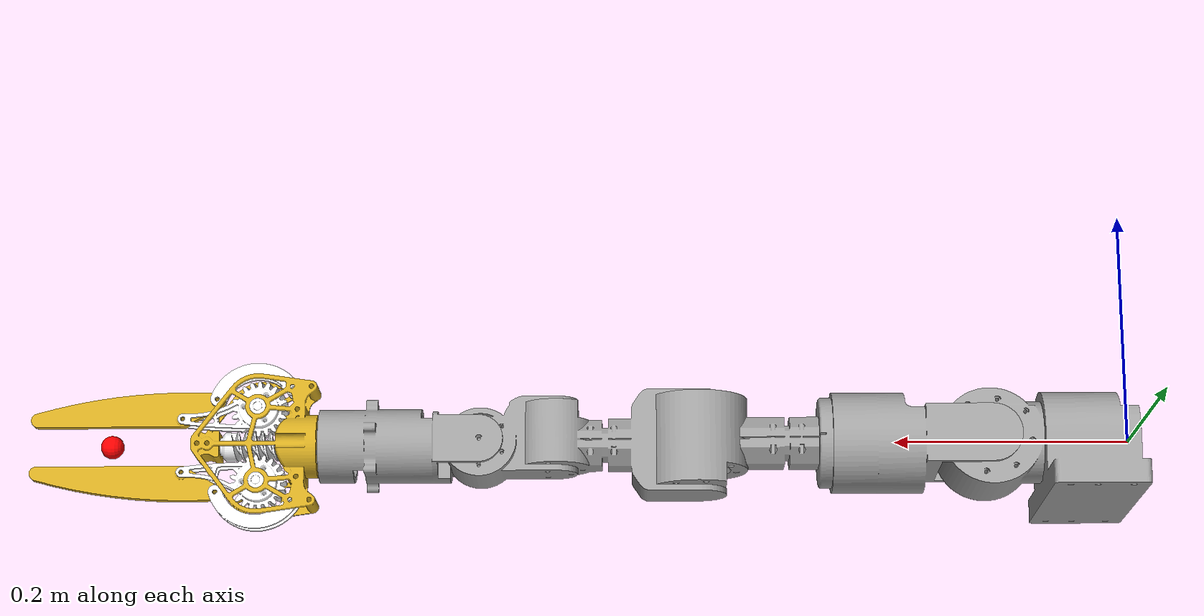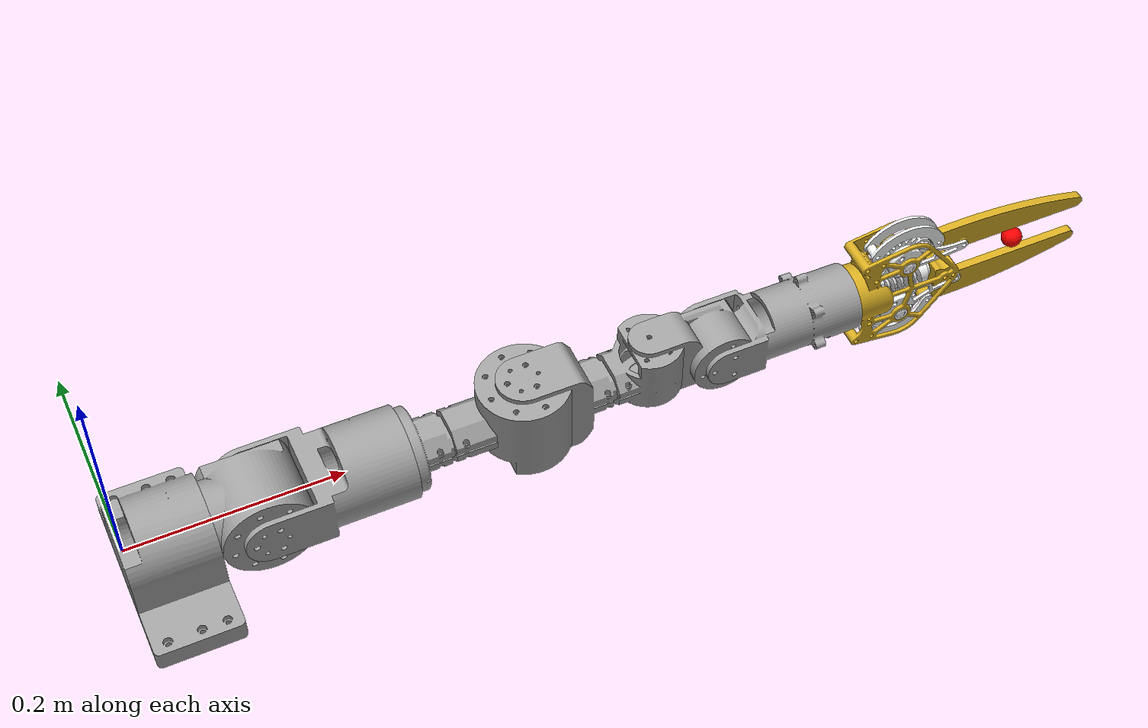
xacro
<?xml version="1.0"?>
<robot xmlns:xacro="http://www.ros.org/wiki/xacro" name="left_walkie_arm">
    <xacro:arg name="initial_positions_file" default="initial_positions.yaml" />

    <!-- Import left_walkie_arm urdf file -->
    <xacro:include filename="$(find walkie_description)/robots/left-walkie-arm.urdf.xacro" />

    <!-- Import control_xacro -->
    <xacro:include filename="left_walkie_arm.ros2_control.xacro" />

    <xacro:left_walkie_arm_ros2_control name="FakeSystem" initial_positions_file="$(arg initial_positions_file)"/>

</robot>

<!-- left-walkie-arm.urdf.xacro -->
<robot xmlns:xacro="http://www.ros.org/wiki/xacro" name="left_walkie_arm">

    <xacro:arg name="robot_name" default="left_walkie_arm" />
    <xacro:arg name="base_link" default="base_link" />
    <xacro:arg name="use_gripper" default="true" />

    <xacro:arg name="ros2_control_hardware_type" default="mock_components" />
    <xacro:arg name="hardware_config_file" default="$(find arm_description)/config/hardware_layout.yaml" />

    <xacro:include filename="$(find arm_description)/urdf/walkie-arm/walkie_arm.urdf.xacro" />
    <xacro:include filename="$(find arm_description)/urdf/walkie-gripper/walkie_gripper.urdf.xacro" />
    <xacro:include filename="$(find arm_description)/urdf/walkie/left_arm_ros2_control.xacro" />

    <xacro:walkie_arm base_link="$(arg base_link)" prefix="left" />

    <xacro:if value="$(arg use_gripper)">
      <xacro:walkie_gripper parent="left_link6" prefix="left" />
    </xacro:if>

    <xacro:if value="$(arg use_gripper)">
      <link name="left_gripper_center">
        <visual>
          <geometry> <sphere radius="0.01"/> </geometry>
          <material name="red"> <color rgba="1 0 0 1"/> </material>
        </visual>
        <collision>
          <geometry> <sphere radius="0.01"/> </geometry>
        </collision>
        <inertial>
          <mass value="0.001" />
          <inertia ixx="1e-6" ixy="0" ixz="0" iyy="1e-6" iyz="0" izz="1e-6" />
        </inertial>
      </link>

      <joint name="left_gripper_center_joint" type="fixed">
        <parent link="left_link7"/>
        <child link="left_gripper_center"/>
        <origin xyz="0.0 0.0 -0.18" rpy="0.0 0.0 0.0"/>
      </joint>
    </xacro:if>

    <gazebo reference="$(arg base_link)">
      <material>Gazebo/Grey</material>
    </gazebo>

    <xacro:left_arm_ros2_control
        name="LeftWalkieSystem"
        prefix="left"
        hardware_config_file="$(arg hardware_config_file)"
    />

</robot>

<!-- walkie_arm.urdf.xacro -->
<robot xmlns:xacro="http://www.ros.org/wiki/xacro">

  <xacro:property name="joint_effort" value="30.0" />
  <xacro:property name="joint_velocity" value="2.0" />
  <xacro:property name="joint_damping" value="0.1" />
  <xacro:property name="joint_friction" value="0.1" />

  <material name="walkie_steel_satin">
    <color rgba="0.62353 0.62353 0.62353 1.0" />
  </material>

  <xacro:macro name="walkie_arm" params="base_link prefix">

    <link name="${base_link}">
      <visual>
        <material name="walkie_steel_satin" />
        <origin rpy="0.0 0.0 0.0" xyz="0.07550 0.0 0.0" />
        <geometry>
          <mesh filename="package://arm_description/meshes/walkie-arm/stl/Body1.267.stl" scale="1 1 1"/>
        </geometry>
      </visual>
      <collision>
        <origin rpy="0.0 0.0 0.0" xyz="0.07550 0.0 0.0" />
        <geometry>
          <mesh filename="package://arm_description/meshes/walkie-arm/stl/Body1.267.stl" scale="1 1 1"/>
        </geometry>
      </collision>
      <inertial>
        <origin xyz="0 0 0" rpy="0 0 0"/>
        <mass value="0.5"/>
        <inertia ixx="0.001" ixy="0" ixz="0" iyy="0.001" iyz="0" izz="0.001"/>
      </inertial>
    </link>

    <joint name="${prefix}_joint1" type="revolute">
      <axis xyz="1.0 0.0 0.0" />
      <limit effort="${joint_effort}" lower="-3.14" upper="3.14" velocity="${joint_velocity}" />
      <parent link="${base_link}" />
      <child link="${prefix}_link1" />
      <origin xyz="0.07550 0.0 0.0" rpy="0.0 0.0 0.0" />
      <dynamics damping="${joint_damping}" friction="${joint_friction}" />
    </joint>

    <link name="${prefix}_link1">
      <visual>
        <material name="walkie_steel_satin" />
        <origin rpy="0.0 0.0 0.0" xyz="0.04425 -0.03925 0.0" />
        <geometry>
          <mesh filename="package://arm_description/meshes/walkie-arm/stl/Body8.006.stl" scale="1 1 1"/>
        </geometry>
      </visual>
      <collision>
        <origin rpy="0.0 0.0 0.0" xyz="0.04425 -0.03925 0.0" />
        <geometry>
          <mesh filename="package://arm_description/meshes/walkie-arm/stl/Body8.006.stl" scale="1 1 1"/>
        </geometry>
      </collision>
      <inertial>
        <mass value="0.15" />
        <inertia ixx="0.00015" ixy="0.0" ixz="0.0" iyy="0.00015" iyz="0.0" izz="0.0001" />
      </inertial>
    </link>

    <joint name="${prefix}_joint2" type="revolute">
      <axis xyz="0.0 -1.0 0.0" />
      <limit effort="${joint_effort}" lower="-1.57" upper="1.57" velocity="${joint_velocity}" />
      <parent link="${prefix}_link1" />
      <child link="${prefix}_link2" />
      <origin xyz="0.04425 -0.03925 0.0" rpy="0.0 -1.57 0.0" />
      <dynamics damping="${joint_damping}" friction="${joint_friction}" />
    </joint>

    <link name="${prefix}_link2">
      <visual>
        <material name="walkie_steel_satin" />
        <origin rpy="0.0 0.0 0.0" xyz="0.0 0.03925 -0.13525" />
        <geometry>
          <mesh filename="package://arm_description/meshes/walkie-arm/stl/Body2.006.stl" scale="1 1 1"/>
        </geometry>
      </visual>
      <collision>
       <origin rpy="0.0 0.0 0.0" xyz="0.0 0.03925 -0.13525" />
        <geometry>
          <mesh filename="package://arm_description/meshes/walkie-arm/stl/Body2.006.stl" scale="1 1 1"/>
        </geometry>
      </collision>
      <inertial>
        <mass value="0.12" />
        <inertia ixx="0.00012" ixy="0.0" ixz="0.0" iyy="0.00012" iyz="0.0" izz="0.00008" />
      </inertial>
    </link>

    <joint name="${prefix}_joint3" type="revolute">
      <axis xyz="0.0 0.0 -1.0" />
      <limit effort="${joint_effort}" lower="-3.14" upper="3.14" velocity="${joint_velocity}" />
      <parent link="${prefix}_link2" />
      <child link="${prefix}_link3" />
      <origin xyz="0.0 0.03925 -0.13525" rpy="0.0 0.0 0.0" />
      <dynamics damping="${joint_damping}" friction="${joint_friction}" />
    </joint>

    <link name="${prefix}_link3">
      <visual>
        <material name="walkie_steel_satin" />
        <origin rpy="0.0 0.0 0.0" xyz="0.03825 0.0 -0.11475" />
        <geometry>
          <mesh filename="package://arm_description/meshes/walkie-arm/stl/Body1.266.stl" scale="1 1 1"/>
        </geometry>
      </visual>
      <collision>
        <origin rpy="0.0 0.0 0.0" xyz="0.03825 0.0 -0.11475" />
        <geometry>
          <mesh filename="package://arm_description/meshes/walkie-arm/stl/Body1.266.stl" scale="1 1 1"/>
        </geometry>
      </collision>
      <inertial>
        <mass value="0.20" />
        <inertia ixx="0.0002" ixy="0.0" ixz="0.0" iyy="0.0002" iyz="0.0" izz="0.00012" />
      </inertial>
    </link>

    <joint name="${prefix}_joint4" type="revolute">
      <axis xyz="1.0 0.0 0.0" />
      <limit effort="${joint_effort}" lower="-1.9" upper="1.9" velocity="${joint_velocity}" />
      <parent link="${prefix}_link3" />
      <child link="${prefix}_link4" />
      <origin xyz="0.03825 0.0 -0.11475" rpy="0.0 0.0 0.0" />
      <dynamics damping="${joint_damping}" friction="${joint_friction}" />
    </joint>

    <link name="${prefix}_link4">
      <visual>
        <material name="walkie_steel_satin" />
        <origin rpy="0.0 0.0 0.0" xyz="-0.05962 0.0 -0.12200" />
        <geometry>
          <mesh filename="package://arm_description/meshes/walkie-arm/stl/Body2.020.stl" scale="1 1 1"/>
        </geometry>
      </visual>
      <collision>
        <origin rpy="0.0 0.0 0.0" xyz="-0.05962 0.0 -0.12200" />
        <geometry>
          <mesh filename="package://arm_description/meshes/walkie-arm/stl/Body2.020.stl" scale="1 1 1"/>
        </geometry>
      </collision>
      <inertial>
        <mass value="0.18" />
        <inertia ixx="0.00025" ixy="0.0" ixz="0.0" iyy="0.00025" iyz="0.0" izz="0.00015" />
      </inertial>
    </link>

    <joint name="${prefix}_joint5" type="revolute">
      <axis xyz="-1.0 0.0 0.0" />
      <limit effort="${joint_effort}" lower="-1.57" upper="1.57" velocity="${joint_velocity}" />
      <parent link="${prefix}_link4" />
      <child link="${prefix}_link5" />
      <origin xyz="-0.05962 0.0 -0.12200" rpy="0.0 0.0 0.0" />
      <dynamics damping="${joint_damping}" friction="${joint_friction}" />
    </joint>

    <link name="${prefix}_link5">
      <visual>
        <material name="walkie_steel_satin" />
        <origin rpy="0.0 0.0 0.0" xyz="0.02037 -0.02800 -0.06500" />
        <geometry>
          <mesh filename="package://arm_description/meshes/walkie-arm/stl/Body2.026.stl" scale="1 1 1"/>
        </geometry>
      </visual>
      <collision>
        <origin rpy="0.0 0.0 0.0" xyz="0.02037 -0.02800 -0.06500" />
        <geometry>
          <mesh filename="package://arm_description/meshes/walkie-arm/stl/Body2.026.stl" scale="1 1 1"/>
        </geometry>
      </collision>
      <inertial>
        <mass value="0.15" />
        <inertia ixx="0.0002" ixy="0.0" ixz="0.0" iyy="0.0002" iyz="0.0" izz="0.00012" />
      </inertial>
    </link>

    <joint name="${prefix}_joint6" type="revolute">
      <axis xyz="0.0 -1.0 0.0" />
      <limit effort="${joint_effort}" lower="-1.57" upper="1.57" velocity="${joint_velocity}" />
      <parent link="${prefix}_link5" />
      <child link="${prefix}_link6" />
      <origin xyz="0.02037 -0.02800 -0.06500" rpy="0.0 0.0 0.0" />
      <dynamics damping="${joint_damping}" friction="${joint_friction}" />
    </joint>

    <link name="${prefix}_link6">
      <visual>
        <material name="walkie_steel_satin" />
        <origin rpy="0.0 0.0 0.0" xyz="0.0 0.02800 -0.13825" />
        <geometry>
          <mesh filename="package://arm_description/meshes/walkie-arm/stl/Body1.259.stl" scale="1 1 1"/>
        </geometry>
      </visual>
      <collision>
        <origin rpy="0.0 0.0 0.0" xyz="0.0 0.02800 -0.13825" />
        <geometry>
          <mesh filename="package://arm_description/meshes/walkie-arm/stl/Body1.259.stl" scale="1 1 1"/>
        </geometry>
      </collision>
      <inertial>
        <mass value="0.10" />
        <inertia ixx="0.00015" ixy="0.0" ixz="0.0" iyy="0.00015" iyz="0.0" izz="0.0001" />
      </inertial>
    </link>

  </xacro:macro>
</robot>

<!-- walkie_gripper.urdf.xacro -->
<robot xmlns:xacro="http://www.ros.org/wiki/xacro">
  <xacro:property name="joint_effort" value="10.0" />
  <xacro:property name="joint_velocity" value="1.0" />
  <xacro:property name="joint_damping" value="0.1" />
  <xacro:property name="joint_friction" value="0.1" />

  <xacro:property name="worm_joint_effort" value="20.0" />
  <xacro:property name="worm_joint_velocity" value="2.0" />

  <xacro:macro name="gripper_link_inertial" params="mass">
    <inertial>
      <origin xyz="0 0 0" rpy="0 0 0" />
      <mass value="${mass}" />
      <inertia ixx="1e-6" ixy="0.0" ixz="0.0" iyy="1e-6" iyz="0.0" izz="1e-6" />
    </inertial>
  </xacro:macro>

  <material name="walkie_aluminum_polished">
    <color rgba="0.95686 0.96078 0.96471 1.0" />
  </material>
  <material name="walkie_opaque_gold">
    <color rgba="0.83137 0.66667 0.12941 1.0" />
  </material>

  <xacro:macro name="walkie_gripper" params="parent prefix">

    <joint name="${prefix}_joint7" type="revolute">
      <axis xyz="0.0 0.0 -1.0" />
      <limit effort="30.0" lower="-3.14" upper="3.14" velocity="2.0" />
      <parent link="${parent}" /> <child link="${prefix}_link7" />
      <origin xyz="0.0 0.02800 -0.13825" rpy="0.0 0.0 0.0" />
      <dynamics damping="${joint_damping}" friction="${joint_friction}" />
    </joint>

    <link name="${prefix}_link7">
      <visual>
        <material name="walkie_opaque_gold" />
        <origin rpy="0.0 0.0 0.0" xyz="0.0 0.02116 -0.03906" />
        <geometry>
          <mesh filename="package://arm_description/meshes/walkie-gripper/stl/Body1.121.stl" scale="1 1 1"/>
        </geometry>
      </visual>
      <collision>
        <origin rpy="0.0 0.0 0.0" xyz="0.0 0.0 -0.03004"/>
        <geometry>
          <box size="0.12520 0.05916 0.05330"/>
        </geometry>
      </collision>
      <xacro:gripper_link_inertial mass="0.2" />
    </link>

    <link name="${prefix}_gripper_worm_gear">
      <xacro:gripper_link_inertial mass="0.02" />
      <visual>
        <material name="walkie_aluminum_polished" />
        <origin rpy="0.0 0.0 0.0" xyz="0.0 0.0 0.0" />
        <geometry>
          <mesh filename="package://arm_description/meshes/walkie-gripper/stl/Body1.133.stl" scale="1 1 1"/>
        </geometry>
      </visual>
    </link>

    <joint name="${prefix}_gripper_worm_gear" type="revolute">
      <limit lower="-15.7" upper="3.14" effort="${worm_joint_effort}" velocity="${worm_joint_velocity}"/>
      <origin rpy="0.0 0.0 0.0" xyz="0.0 0.0 -0.00275"/>
      <parent link="${prefix}_link7"/>
      <child link="${prefix}_gripper_worm_gear"/>
      <axis xyz="0.0 0.0 -1.0"/>
      <dynamics damping="${joint_damping}" friction="${joint_friction}" />
    </joint>

    <link name="${prefix}_gripper_gear_r">
      <xacro:gripper_link_inertial mass="0.01" />
      <visual>
        <material name="walkie_aluminum_polished" />
        <geometry>
          <mesh filename="package://arm_description/meshes/walkie-gripper/stl/Body1.113.stl" scale="1 1 1"/>
        </geometry>
      </visual>
    </link>

    <joint name="${prefix}_gripper_gear_r" type="revolute">
      <limit lower="-3.14" upper="3.14" effort="${joint_effort}" velocity="${joint_velocity}"/>
      <mimic multiplier="0.1" offset="0" joint="${prefix}_gripper_worm_gear"/>
      <origin rpy="0.0 0.0 0.0" xyz="-0.03240 -0.00100 -0.05335"/>
      <parent link="${prefix}_link7"/>
      <child link="${prefix}_gripper_gear_r"/>
      <axis xyz="0.0 -1.0 0.0"/>
      <dynamics damping="${joint_damping}" friction="${joint_friction}" />
    </joint>

    <link name="${prefix}_gripper_gear_l">
      <xacro:gripper_link_inertial mass="0.01" />
      <visual>
        <material name="walkie_aluminum_polished" />
        <geometry>
          <mesh filename="package://arm_description/meshes/walkie-gripper/stl/Body1.007.stl" scale="1 1 1"/>
        </geometry>
      </visual>
    </link>

    <joint name="${prefix}_gripper_gear_l" type="revolute">
      <limit lower="-3.14" upper="3.14" effort="${joint_effort}" velocity="${joint_velocity}"/>
      <mimic multiplier="-0.1" offset="0" joint="${prefix}_gripper_worm_gear"/>
      <origin rpy="0.0 0.0 0.0" xyz="0.03240 -0.00100 -0.05335"/>
      <parent link="${prefix}_link7"/>
      <child link="${prefix}_gripper_gear_l"/>
      <axis xyz="0.0 -1.0 0.0"/>
      <dynamics damping="${joint_damping}" friction="${joint_friction}" />
    </joint>

    <link name="${prefix}_gripper_hand_r">
      <xacro:gripper_link_inertial mass="0.015" />
      <collision>
        <origin rpy="0.0 0.0 0.0" xyz="-0.00904 0.0 -0.04823"/>
        <geometry>
          <box size="0.03010 0.01000 0.16753"/>
        </geometry>
      </collision>
      <visual>
        <material name="walkie_opaque_gold" />
        <geometry>
          <mesh filename="package://arm_description/meshes/walkie-gripper/stl/Body1.123.stl" scale="1 1 1"/>
        </geometry>
      </visual>
    </link>

    <joint name="${prefix}_gripper_hand_r" type="revolute">
      <limit lower="-3.14" upper="3.14" effort="${joint_effort}" velocity="${joint_velocity}"/>
      <mimic multiplier="-1.0" offset="0" joint="${prefix}_gripper_gear_r"/>
      <origin rpy="0.0 0.0 0.0" xyz="0.00896 0.00100 -0.06579"/>
      <parent link="${prefix}_gripper_gear_r"/>
      <child link="${prefix}_gripper_hand_r"/>
      <axis xyz="0.0 -1.0 0.0"/>
      <dynamics damping="${joint_damping}" friction="${joint_friction}" />
    </joint>

    <link name="${prefix}_gripper_hand_l">
      <xacro:gripper_link_inertial mass="0.015" />
      <collision>
        <origin rpy="0.0 0.0 0.0" xyz="0.00904 0.0 -0.04823"/>
        <geometry>
          <box size="0.03010 0.01000 0.16753"/>
        </geometry>
      </collision>
      <visual>
        <material name="walkie_opaque_gold" />
        <geometry>
          <mesh filename="package://arm_description/meshes/walkie-gripper/stl/Body1.046.stl" scale="1 1 1"/>
        </geometry>
      </visual>
    </link>

    <joint name="${prefix}_gripper_hand_l" type="revolute">
      <limit lower="-3.14" upper="3.14" effort="${joint_effort}" velocity="${joint_velocity}"/>
      <mimic multiplier="-1.0" offset="0" joint="${prefix}_gripper_gear_l"/>
      <origin rpy="0.0 0.0 0.0" xyz="-0.00896 0.00100 -0.06579"/>
      <parent link="${prefix}_gripper_gear_l"/>
      <child link="${prefix}_gripper_hand_l"/>
      <axis xyz="0.0 -1.0 0.0"/>
      <dynamics damping="${joint_damping}" friction="${joint_friction}" />
    </joint>

    <link name="${prefix}_gripper_connector_r">
      <xacro:gripper_link_inertial mass="0.01" />
      <visual>
        <material name="walkie_aluminum_polished" />
        <geometry>
          <mesh filename="package://arm_description/meshes/walkie-gripper/stl/Body1.019.stl" scale="1 1 1"/>
        </geometry>
      </visual>
    </link>

    <joint name="${prefix}_gripper_connector_r" type="revolute">
      <limit lower="-3.14" upper="3.14" effort="${joint_effort}" velocity="${joint_velocity}"/>
      <mimic multiplier="-1.0" offset="0" joint="${prefix}_gripper_hand_r"/>
      <origin rpy="0.0 0.0 0.0" xyz="-0.01742 0.0 0.02955"/>
      <parent link="${prefix}_gripper_hand_r"/>
      <child link="${prefix}_gripper_connector_r"/>
      <axis xyz="0.0 -1.0 0.0"/>
      <dynamics damping="${joint_damping}" friction="${joint_friction}" />
    </joint>

    <link name="${prefix}_gripper_connector_l">
      <xacro:gripper_link_inertial mass="0.01" />
      <visual>
        <material name="walkie_aluminum_polished" />
        <geometry>
          <mesh filename="package://arm_description/meshes/walkie-gripper/stl/Body1.003.stl" scale="1 1 1"/>
        </geometry>
      </visual>
    </link>

    <joint name="${prefix}_gripper_connector_l" type="revolute">
      <limit lower="-3.14" upper="3.14" effort="${joint_effort}" velocity="${joint_velocity}"/>
      <mimic multiplier="-1.0" offset="0" joint="${prefix}_gripper_hand_l"/>
      <origin rpy="0.0 0.0 0.0" xyz="0.01742 0.0 0.02955"/>
      <parent link="${prefix}_gripper_hand_l"/>
      <child link="${prefix}_gripper_connector_l"/>
      <axis xyz="0.0 -1.0 0.0"/>
      <dynamics damping="${joint_damping}" friction="${joint_friction}" />
    </joint>

  </xacro:macro>
</robot>
